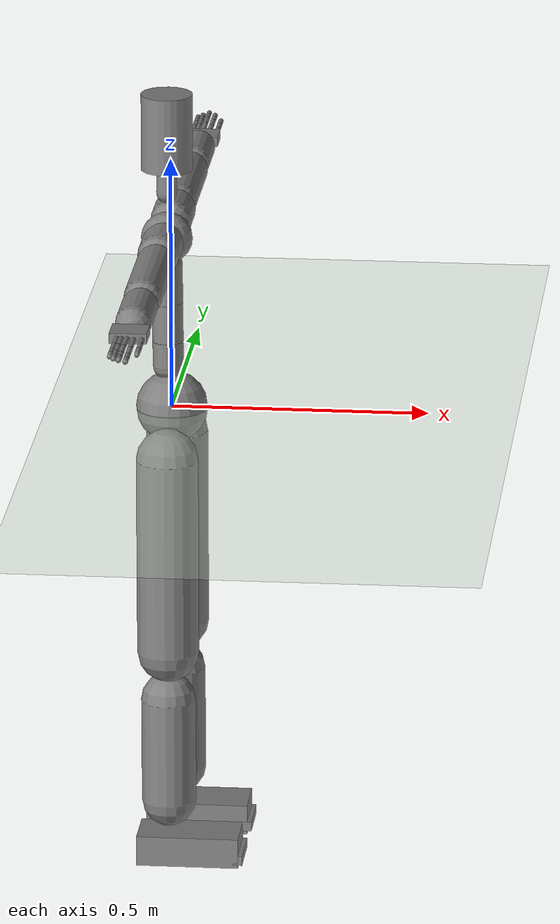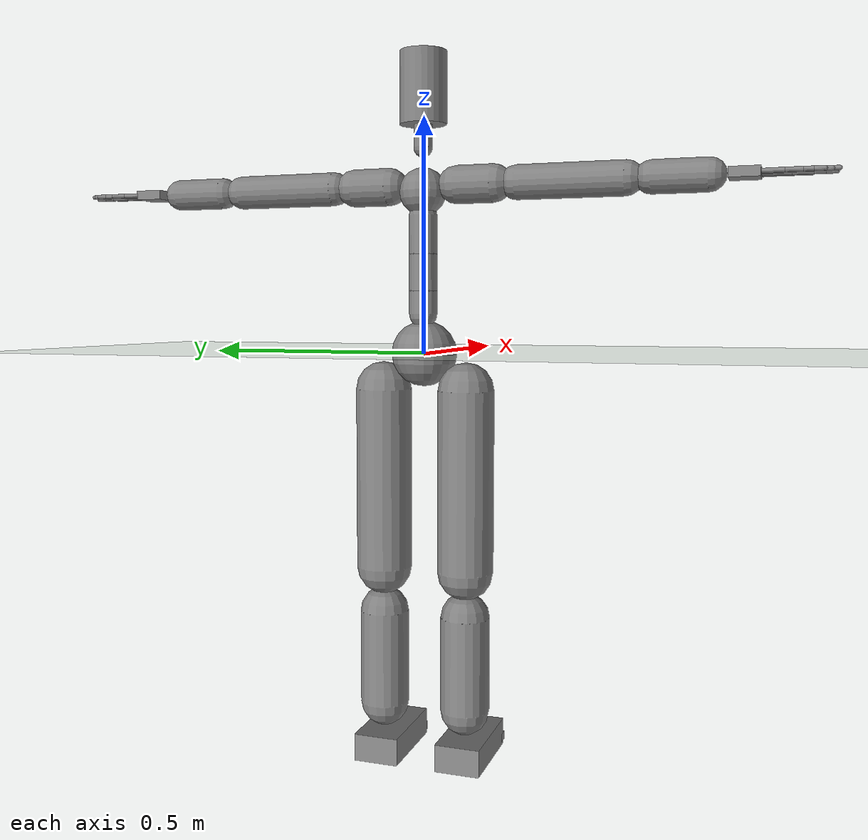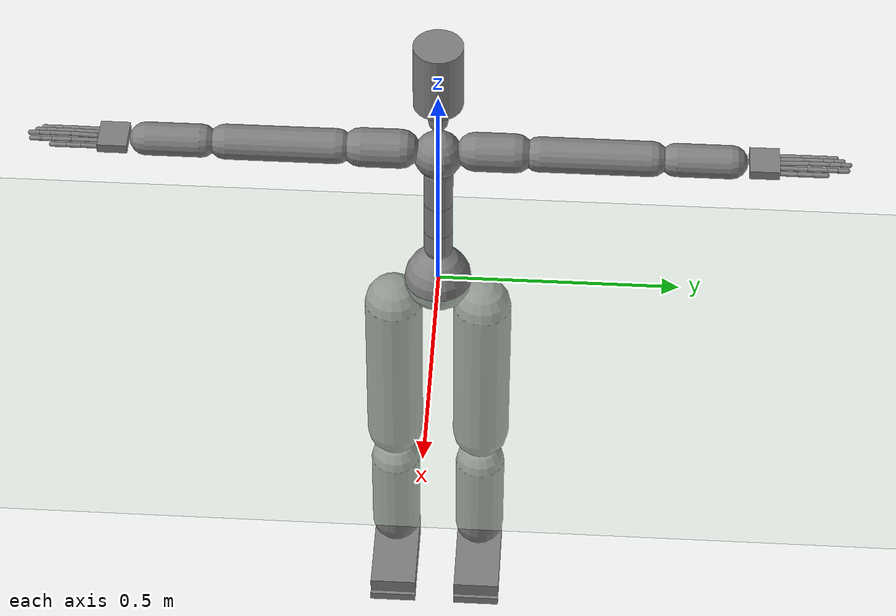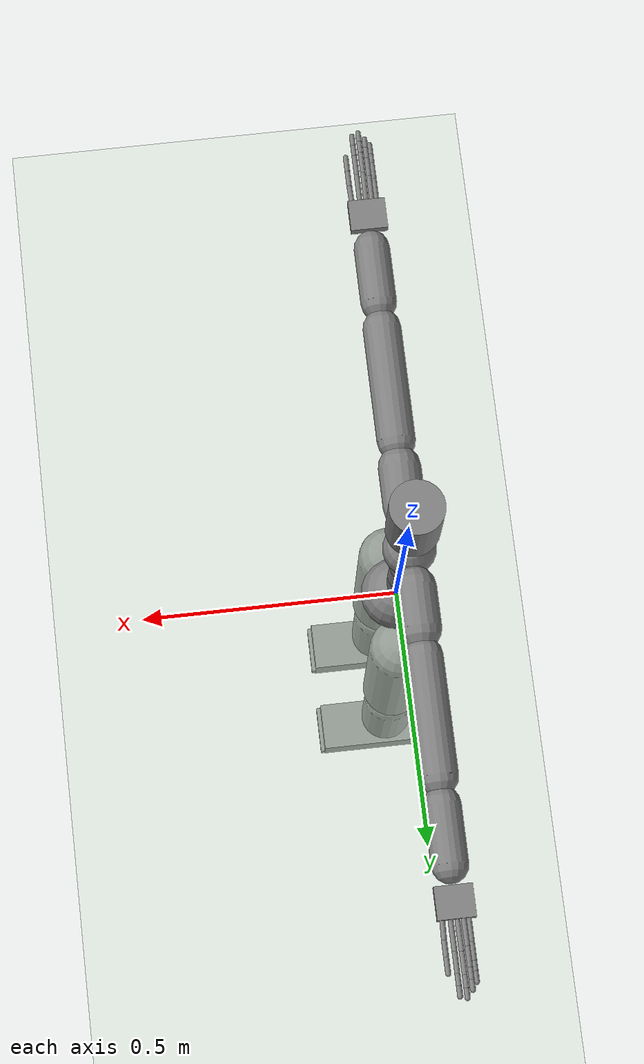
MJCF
<!-- change the damping from 50 to 500 -->
<mujoco model="humanoid">
  <compiler coordinate="local"/>
  <statistic extent="2" center="0 0 1"/>
  <option timestep="0.00555"/>
  <default>
    <motor ctrlrange="-1 1" ctrllimited="true"/>
    <geom type="capsule" condim="1" friction="1.0 0.05 0.05" solimp=".9 .99 .003" solref=".015 1"/>
    <joint type="hinge" damping="0.1" stiffness="5" armature=".007" limited="true" solimplimit="0 .99 .01"/>
    <site size=".04" group="3"/>
    <default class="force-torque">
      <site type="box" size=".01 .01 .02" rgba="1 0 0 1"/>
    </default>
    <default class="touch">
      <site type="capsule" rgba="0 0 1 .3"/>
    </default>
  </default>
  <asset>
    <texture type="skybox" builtin="gradient" rgb1=".4 .5 .6" rgb2="0 0 0" width="100" height="100"/>
    <texture builtin="flat" height="1278" mark="cross" markrgb="1 1 1" name="texgeom" random="0.01" rgb1="0.8 0.6 0.4" rgb2="0.8 0.6 0.4" type="cube" width="127"/>
    <texture builtin="checker" height="100" name="texplane" rgb1="0 0 0" rgb2="0.8 0.8 0.8" type="2d" width="100"/>
    <material name="MatPlane" reflectance="0.5" shininess="1" specular="1" texrepeat="60 60" texture="texplane"/>
    <material name="geom" texture="texgeom" texuniform="true"/>
  </asset>
  <worldbody>
    <light cutoff="100" diffuse="1 1 1" dir="-0 0 -1.3" directional="true" exponent="1" pos="0 0 1.3" specular=".1 .1 .1"/>
    <geom conaffinity="1" condim="3" name="floor" pos="0 0 0" rgba="0.8 0.9 0.8 1" size="100 100 .2" type="plane" material="MatPlane"/>
    <body name="pHipOrigin" pos="0 0 0">
      <freejoint name="pHipOrigin"/>
      <geom type="sphere" contype="1" conaffinity="1" density="4629.6296296296305" size="0.07011" pos="0.0000 0.0000 -0.0000"/>
      <body name="jL5S1" pos="-0.007180346382188555 0.0 0.06462293523202631">
        <geom type="capsule" contype="1" conaffinity="1" density="1000" fromto="0 0 0.02 0.0 0.0 0.06891632825136185" size="0.03"/>
        <joint name="jL5S1_x" type="hinge" pos="0 0 0" axis="1 0 0" stiffness="500" damping="500" armature="0.02" range="-180.0000 180.0000"/>
        <joint name="jL5S1_y" type="hinge" pos="0 0 0" axis="0 1 0" stiffness="500" damping="500" armature="0.02" range="-180.0000 180.0000"/>
        <joint name="jL5S1_z" type="hinge" pos="0 0 0" axis="0 0 1" stiffness="500" damping="500" armature="0.02" range="-180.0000 180.0000"/>
        <body name="jL4L3" pos="0.0 0.0 0.06891632825136185">
          <geom type="capsule" contype="1" conaffinity="1" density="1000" fromto="0 0 0 -0.0005982957480561813 0.0 0.07754973557177482" size="0.03"/>
          <joint name="jL4L3_x" type="hinge" pos="0 0 0" axis="1 0 0" stiffness="500" damping="500" armature="0.02" range="-180.0000 180.0000"/>
          <joint name="jL4L3_y" type="hinge" pos="0 0 0" axis="0 1 0" stiffness="500" damping="500" armature="0.02" range="-180.0000 180.0000"/>
          <joint name="jL4L3_z" type="hinge" pos="0 0 0" axis="0 0 1" stiffness="500" damping="500" armature="0.02" range="-180.0000 180.0000"/>
          <body name="jL1T12" pos="-0.0005982957480561813 0.0 0.07754973557177482">
            <geom type="capsule" contype="1" conaffinity="1" density="1000" fromto="0 0 0 -0.0006235483508225763 0.0 0.08066581381203114" size="0.03"/>
            <joint name="jL1T12_x" type="hinge" pos="0 0 0" axis="1 0 0" stiffness="500" damping="500" armature="0.02" range="-180.0000 180.0000"/>
            <joint name="jL1T12_y" type="hinge" pos="0 0 0" axis="0 1 0" stiffness="500" damping="500" armature="0.02" range="-180.0000 180.0000"/>
            <joint name="jL1T12_z" type="hinge" pos="0 0 0" axis="0 0 1" stiffness="500" damping="500" armature="0.02" range="-180.0000 180.0000"/>
            <body name="jT9T8" pos="-0.0006235483508225763 0.0 0.08066581381203114">
              <geom type="sphere" contype="1" conaffinity="1" density="1000" size="0.05011" pos="0.0000 0.0000 0.050000"/>
              <joint name="jT9T8_x" type="hinge" pos="0 0 0" axis="1 0 0" stiffness="500" damping="500" armature="0.02" range="-180.0000 180.0000"/>
              <joint name="jT9T8_y" type="hinge" pos="0 0 0" axis="0 1 0" stiffness="500" damping="500" armature="0.02" range="-180.0000 180.0000"/>
              <joint name="jT9T8_z" type="hinge" pos="0 0 0" axis="0 0 1" stiffness="500" damping="500" armature="0.02" range="-180.0000 180.0000"/>
              <body name="jT1C7" pos="0.0 0.0 0.11084800958633423">
                <geom type="capsule" contype="1" conaffinity="1" density="1000" fromto="0 0 0.03 0.0009172181466941922 0.0 0.07774603617223645" size="0.02"/>
                <joint name="jT1C7_x" type="hinge" pos="0 0 0" axis="1 0 0" stiffness="500" damping="500" armature="0.02" range="-180.0000 180.0000"/>
                <joint name="jT1C7_y" type="hinge" pos="0 0 0" axis="0 1 0" stiffness="500" damping="500" armature="0.02" range="-180.0000 180.0000"/>
                <joint name="jT1C7_z" type="hinge" pos="0 0 0" axis="0 0 1" stiffness="500" damping="500" armature="0.02" range="-180.0000 180.0000"/>
                <body name="jC1Head" pos="0.0009172181466941922 0.0 0.07774603617223645">
                  <geom type="cylinder" contype="1" conaffinity="1" density="1000" fromto="0 0 0 0 0 0.15" size="0.05"/>
                  <joint name="jC1Head_x" type="hinge" pos="0 0 0" axis="1 0 0" stiffness="500" damping="500" armature="0.02" range="-180.0000 180.0000"/>
                  <joint name="jC1Head_y" type="hinge" pos="0 0 0" axis="0 1 0" stiffness="500" damping="500" armature="0.02" range="-180.0000 180.0000"/>
                  <joint name="jC1Head_z" type="hinge" pos="0 0 0" axis="0 0 1" stiffness="500" damping="500" armature="0.02" range="-180.0000 180.0000"/>
                </body>
              </body>
              <body name="jRightT4Shoulder" pos="0.0 -0.025392003848493914 0.0619112784771549">
                <geom type="capsule" contype="1" conaffinity="1" density="1000" fromto="0 -0.05 0 0.0 -0.12868478894233704 0.0" size="0.04"/>
                <joint name="jRightT4Shoulder_x" type="hinge" pos="0 0 0" axis="1 0 0" stiffness="500" damping="500" armature="0.02" range="-180.0000 180.0000"/>
                <joint name="jRightT4Shoulder_y" type="hinge" pos="0 0 0" axis="0 1 0" stiffness="500" damping="500" armature="0.02" range="-180.0000 180.0000"/>
                <joint name="jRightT4Shoulder_z" type="hinge" pos="0 0 0" axis="0 0 1" stiffness="500" damping="500" armature="0.02" range="-180.0000 180.0000"/>
                <body name="jRightShoulder" pos="0.0 -0.12868478894233704 0.0">
                  <geom type="capsule" contype="1" conaffinity="1" density="1000" fromto="0 -0.05 0 0.0 -0.2721332907676697 0.0" size="0.036"/>
                  <joint name="jRightShoulder_x" type="hinge" pos="0 0 0" axis="1 0 0" stiffness="500" damping="500" armature="0.02" range="-180.0000 180.0000"/>
                  <joint name="jRightShoulder_y" type="hinge" pos="0 0 0" axis="0 1 0" stiffness="500" damping="500" armature="0.02" range="-180.0000 180.0000"/>
                  <joint name="jRightShoulder_z" type="hinge" pos="0 0 0" axis="0 0 1" stiffness="500" damping="500" armature="0.02" range="-180.0000 180.0000"/>
                  <body name="jRightElbow" pos="0.0 -0.2721332907676697 0.0">
                    <geom type="capsule" contype="1" conaffinity="1" density="1000" fromto="0 -0.05 0 9.097585321878134e-05 -0.16003785279386482 0.0" size="0.034"/>
                    <joint name="jRightElbow_x" type="hinge" pos="0 0 0" axis="1 0 0" stiffness="500" damping="500" armature="0.02" range="-180.0000 180.0000"/>
                    <joint name="jRightElbow_y" type="hinge" pos="0 0 0" axis="0 1 0" stiffness="500" damping="500" armature="0.02" range="-180.0000 180.0000"/>
                    <joint name="jRightElbow_z" type="hinge" pos="0 0 0" axis="0 0 1" stiffness="500" damping="500" armature="0.02" range="-180.0000 180.0000"/>
                    <body name="jRightWrist" pos="9.097585321878134e-05 -0.22603785279386482 0.0">
                      <geom density="1000" type="box" pos="0 0 0" size="0.035 0.03 0.01" quat="1.0 0 0 0"/>
                      <joint name="jRightWrist_x" type="hinge" pos="0 0 0" axis="1 0 0" stiffness="500" damping="500" armature="0.02" range="-180.0000 180.0000"/>
                      <joint name="jRightWrist_y" type="hinge" pos="0 0 0" axis="0 1 0" stiffness="500" damping="500" armature="0.02" range="-180.0000 180.0000"/>
                      <joint name="jRightWrist_z" type="hinge" pos="0 0 0" axis="0 0 1" stiffness="500" damping="500" armature="0.02" range="-180.0000 180.0000"/>
                      <body name="jRightFirstCMC" pos="0.026230283 -0.025143197 -0.0011878677">
                        <geom type="capsule" contype="1" conaffinity="1" density="1000" fromto="0 0 0 0.00136227672919631 -0.038442548364400864 0.0008122885483317077" size="0.005"/>
                        <joint name="jRightFirstCMC_x" type="hinge" pos="0 0 0" axis="1 0 0" stiffness="500" damping="500" armature="0.02" range="-180.0000 180.0000"/>
                        <joint name="jRightFirstCMC_y" type="hinge" pos="0 0 0" axis="0 1 0" stiffness="500" damping="500" armature="0.02" range="-180.0000 180.0000"/>
                        <joint name="jRightFirstCMC_z" type="hinge" pos="0 0 0" axis="0 0 1" stiffness="500" damping="500" armature="0.02" range="-180.0000 180.0000"/>
                        <body name="jRightFirstMCP" pos="0.0013622767 -0.03844255 0.00081228855">
                          <geom type="capsule" contype="1" conaffinity="1" density="1000" fromto="0 0 0 0.0 -0.02956804819405079 0.0" size="0.005"/>
                          <joint name="jRightFirstMCP_x" type="hinge" pos="0 0 0" axis="1 0 0" stiffness="500" damping="500" armature="0.02" range="-180.0000 180.0000"/>
                          <joint name="jRightFirstMCP_y" type="hinge" pos="0 0 0" axis="0 1 0" stiffness="500" damping="500" armature="0.02" range="-180.0000 180.0000"/>
                          <joint name="jRightFirstMCP_z" type="hinge" pos="0 0 0" axis="0 0 1" stiffness="500" damping="500" armature="0.02" range="-180.0000 180.0000"/>
                          <body name="jRightIP" pos="0.0 -0.029568048 0.0">
                            <geom type="capsule" contype="1" conaffinity="1" density="1000" fromto="0 0 0 0.0 -0.029483415186405182 0.0" size="0.005"/>
                            <joint name="jRightIP_x" type="hinge" pos="0 0 0" axis="1 0 0" stiffness="500" damping="500" armature="0.02" range="-180.0000 180.0000"/>
                            <joint name="jRightIP_y" type="hinge" pos="0 0 0" axis="0 1 0" stiffness="500" damping="500" armature="0.02" range="-180.0000 180.0000"/>
                            <joint name="jRightIP_z" type="hinge" pos="0 0 0" axis="0 0 1" stiffness="500" damping="500" armature="0.02" range="-180.0000 180.0000"/>
                          </body>
                        </body>
                      </body>
                      <body name="jRightSecondCMC" pos="0.011155235 -0.032592066 -0.0005684847">
                        <geom type="capsule" contype="1" conaffinity="1" density="1000" fromto="0 0 0 -0.00032714949338696897 -0.05217788740992546 -0.0005412576720118523" size="0.005"/>
                        <joint name="jRightSecondCMC_x" type="hinge" pos="0 0 0" axis="1 0 0" stiffness="500" damping="500" armature="0.02" range="-180.0000 180.0000"/>
                        <joint name="jRightSecondCMC_y" type="hinge" pos="0 0 0" axis="0 1 0" stiffness="500" damping="500" armature="0.02" range="-180.0000 180.0000"/>
                        <joint name="jRightSecondCMC_z" type="hinge" pos="0 0 0" axis="0 0 1" stiffness="500" damping="500" armature="0.02" range="-180.0000 180.0000"/>
                        <body name="jRightSecondMCP" pos="-0.0003271495 -0.052177887 -0.0005412577">
                          <geom type="capsule" contype="1" conaffinity="1" density="1000" fromto="0 0 0 0.0 -0.03924357891082764 0.0" size="0.005"/>
                          <joint name="jRightSecondMCP_x" type="hinge" pos="0 0 0" axis="1 0 0" stiffness="500" damping="500" armature="0.02" range="-180.0000 180.0000"/>
                          <joint name="jRightSecondMCP_y" type="hinge" pos="0 0 0" axis="0 1 0" stiffness="500" damping="500" armature="0.02" range="-180.0000 180.0000"/>
                          <joint name="jRightSecondMCP_z" type="hinge" pos="0 0 0" axis="0 0 1" stiffness="500" damping="500" armature="0.02" range="-180.0000 180.0000"/>
                          <body name="jRightSecondPIP" pos="0.0 -0.03924358 0.0">
                            <geom type="capsule" contype="1" conaffinity="1" density="1000" fromto="0 0 0 0.0 -0.02142910845577717 0.0" size="0.005"/>
                            <joint name="jRightSecondPIP_x" type="hinge" pos="0 0 0" axis="1 0 0" stiffness="500" damping="500" armature="0.02" range="-180.0000 180.0000"/>
                            <joint name="jRightSecondPIP_y" type="hinge" pos="0 0 0" axis="0 1 0" stiffness="500" damping="500" armature="0.02" range="-180.0000 180.0000"/>
                            <joint name="jRightSecondPIP_z" type="hinge" pos="0 0 0" axis="0 0 1" stiffness="500" damping="500" armature="0.02" range="-180.0000 180.0000"/>
                            <body name="jRightSecondDIP" pos="0.0 -0.021429108 0.0">
                              <geom type="capsule" contype="1" conaffinity="1" density="1000" fromto="0 0 0 0.0 -0.019212350249290466 0.0" size="0.005"/>
                              <joint name="jRightSecondDIP_x" type="hinge" pos="0 0 0" axis="1 0 0" stiffness="500" damping="500" armature="0.02" range="-180.0000 180.0000"/>
                              <joint name="jRightSecondDIP_y" type="hinge" pos="0 0 0" axis="0 1 0" stiffness="500" damping="500" armature="0.02" range="-180.0000 180.0000"/>
                              <joint name="jRightSecondDIP_z" type="hinge" pos="0 0 0" axis="0 0 1" stiffness="500" damping="500" armature="0.02" range="-180.0000 180.0000"/>
                            </body>
                          </body>
                        </body>
                      </body>
                      <body name="jRightThirdCMC" pos="-0.00063335785 -0.03425053 0.0014399445">
                        <geom type="capsule" contype="1" conaffinity="1" density="1000" fromto="0 0 0 -0.0006345764850266278 -0.0525747574865818 0.0014303569914773107" size="0.005"/>
                        <joint name="jRightThirdCMC_x" type="hinge" pos="0 0 0" axis="1 0 0" stiffness="500" damping="500" armature="0.02" range="-180.0000 180.0000"/>
                        <joint name="jRightThirdCMC_y" type="hinge" pos="0 0 0" axis="0 1 0" stiffness="500" damping="500" armature="0.02" range="-180.0000 180.0000"/>
                        <joint name="jRightThirdCMC_z" type="hinge" pos="0 0 0" axis="0 0 1" stiffness="500" damping="500" armature="0.02" range="-180.0000 180.0000"/>
                        <body name="jRightThirdMCP" pos="-0.0006345765 -0.052574757 0.001430357">
                          <geom type="capsule" contype="1" conaffinity="1" density="1000" fromto="0 0 0 0.0 -0.041011691093444824 0.0" size="0.005"/>
                          <joint name="jRightThirdMCP_x" type="hinge" pos="0 0 0" axis="1 0 0" stiffness="500" damping="500" armature="0.02" range="-180.0000 180.0000"/>
                          <joint name="jRightThirdMCP_y" type="hinge" pos="0 0 0" axis="0 1 0" stiffness="500" damping="500" armature="0.02" range="-180.0000 180.0000"/>
                          <joint name="jRightThirdMCP_z" type="hinge" pos="0 0 0" axis="0 0 1" stiffness="500" damping="500" armature="0.02" range="-180.0000 180.0000"/>
                          <body name="jRightThirdPIP" pos="0.0 -0.04101169 0.0">
                            <geom type="capsule" contype="1" conaffinity="1" density="1000" fromto="0 0 0 0.0 -0.022741451859474182 0.0" size="0.005"/>
                            <joint name="jRightThirdPIP_x" type="hinge" pos="0 0 0" axis="1 0 0" stiffness="500" damping="500" armature="0.02" range="-180.0000 180.0000"/>
                            <joint name="jRightThirdPIP_y" type="hinge" pos="0 0 0" axis="0 1 0" stiffness="500" damping="500" armature="0.02" range="-180.0000 180.0000"/>
                            <joint name="jRightThirdPIP_z" type="hinge" pos="0 0 0" axis="0 0 1" stiffness="500" damping="500" armature="0.02" range="-180.0000 180.0000"/>
                            <body name="jRightThirdDIP" pos="0.0 -0.022741452 0.0">
                              <geom type="capsule" contype="1" conaffinity="1" density="1000" fromto="0 0 0 0.0 -0.01808418333530426 0.0" size="0.005"/>
                              <joint name="jRightThirdDIP_x" type="hinge" pos="0 0 0" axis="1 0 0" stiffness="500" damping="500" armature="0.02" range="-180.0000 180.0000"/>
                              <joint name="jRightThirdDIP_y" type="hinge" pos="0 0 0" axis="0 1 0" stiffness="500" damping="500" armature="0.02" range="-180.0000 180.0000"/>
                              <joint name="jRightThirdDIP_z" type="hinge" pos="0 0 0" axis="0 0 1" stiffness="500" damping="500" armature="0.02" range="-180.0000 180.0000"/>
                            </body>
                          </body>
                        </body>
                      </body>
                      <body name="jRightFourthCMC" pos="-0.0116171455 -0.03235567 0.00076160184">
                        <geom type="capsule" contype="1" conaffinity="1" density="1000" fromto="0 0 0 -0.00034027619403786957 -0.04663816839456558 0.0007327226339839399" size="0.005"/>
                        <joint name="jRightFourthCMC_x" type="hinge" pos="0 0 0" axis="1 0 0" stiffness="500" damping="500" armature="0.02" range="-180.0000 180.0000"/>
                        <joint name="jRightFourthCMC_y" type="hinge" pos="0 0 0" axis="0 1 0" stiffness="500" damping="500" armature="0.02" range="-180.0000 180.0000"/>
                        <joint name="jRightFourthCMC_z" type="hinge" pos="0 0 0" axis="0 0 1" stiffness="500" damping="500" armature="0.02" range="-180.0000 180.0000"/>
                        <body name="jRightFourthMCP" pos="-0.0003402762 -0.04663817 0.00073272263">
                          <geom type="capsule" contype="1" conaffinity="1" density="1000" fromto="0 0 0 0.0 -0.036567993462085724 0.0" size="0.005"/>
                          <joint name="jRightFourthMCP_x" type="hinge" pos="0 0 0" axis="1 0 0" stiffness="500" damping="500" armature="0.02" range="-180.0000 180.0000"/>
                          <joint name="jRightFourthMCP_y" type="hinge" pos="0 0 0" axis="0 1 0" stiffness="500" damping="500" armature="0.02" range="-180.0000 180.0000"/>
                          <joint name="jRightFourthMCP_z" type="hinge" pos="0 0 0" axis="0 0 1" stiffness="500" damping="500" armature="0.02" range="-180.0000 180.0000"/>
                          <body name="jRightFourthPIP" pos="0.0 -0.036567993 0.0">
                            <geom type="capsule" contype="1" conaffinity="1" density="1000" fromto="0 0 0 0.0 -0.02168475091457367 0.0" size="0.005"/>
                            <joint name="jRightFourthPIP_x" type="hinge" pos="0 0 0" axis="1 0 0" stiffness="500" damping="500" armature="0.02" range="-180.0000 180.0000"/>
                            <joint name="jRightFourthPIP_y" type="hinge" pos="0 0 0" axis="0 1 0" stiffness="500" damping="500" armature="0.02" range="-180.0000 180.0000"/>
                            <joint name="jRightFourthPIP_z" type="hinge" pos="0 0 0" axis="0 0 1" stiffness="500" damping="500" armature="0.02" range="-180.0000 180.0000"/>
                            <body name="jRightFourthDIP" pos="0.0 -0.02168475 0.0">
                              <geom type="capsule" contype="1" conaffinity="1" density="1000" fromto="0 0 0 0.0 -0.01827874779701233 0.0" size="0.005"/>
                              <joint name="jRightFourthDIP_x" type="hinge" pos="0 0 0" axis="1 0 0" stiffness="500" damping="500" armature="0.02" range="-180.0000 180.0000"/>
                              <joint name="jRightFourthDIP_y" type="hinge" pos="0 0 0" axis="0 1 0" stiffness="500" damping="500" armature="0.02" range="-180.0000 180.0000"/>
                              <joint name="jRightFourthDIP_z" type="hinge" pos="0 0 0" axis="0 0 1" stiffness="500" damping="500" armature="0.02" range="-180.0000 180.0000"/>
                            </body>
                          </body>
                        </body>
                      </body>
                      <body name="jRightFifthCMC" pos="-0.02037089 -0.02838451 0.0005599352">
                        <geom type="capsule" contype="1" conaffinity="1" density="1000" fromto="0 0 0 -6.454563390434487e-06 -0.0436994768679142 0.0006013591773808002" size="0.005"/>
                        <joint name="jRightFifthCMC_x" type="hinge" pos="0 0 0" axis="1 0 0" stiffness="500" damping="500" armature="0.02" range="-180.0000 180.0000"/>
                        <joint name="jRightFifthCMC_y" type="hinge" pos="0 0 0" axis="0 1 0" stiffness="500" damping="500" armature="0.02" range="-180.0000 180.0000"/>
                        <joint name="jRightFifthCMC_z" type="hinge" pos="0 0 0" axis="0 0 1" stiffness="500" damping="500" armature="0.02" range="-180.0000 180.0000"/>
                        <body name="jRightFifthMCP" pos="-6.4545634e-06 -0.043699477 0.0006013592">
                          <geom type="capsule" contype="1" conaffinity="1" density="1000" fromto="0 0 0 0.0 -0.032733701169490814 0.0" size="0.005"/>
                          <joint name="jRightFifthMCP_x" type="hinge" pos="0 0 0" axis="1 0 0" stiffness="500" damping="500" armature="0.02" range="-180.0000 180.0000"/>
                          <joint name="jRightFifthMCP_y" type="hinge" pos="0 0 0" axis="0 1 0" stiffness="500" damping="500" armature="0.02" range="-180.0000 180.0000"/>
                          <joint name="jRightFifthMCP_z" type="hinge" pos="0 0 0" axis="0 0 1" stiffness="500" damping="500" armature="0.02" range="-180.0000 180.0000"/>
                          <body name="jRightFifthPIP" pos="0.0 -0.0327337 0.0">
                            <geom type="capsule" contype="1" conaffinity="1" density="1000" fromto="0 0 0 0.0 -0.01849217712879181 0.0" size="0.005"/>
                            <joint name="jRightFifthPIP_x" type="hinge" pos="0 0 0" axis="1 0 0" stiffness="500" damping="500" armature="0.02" range="-180.0000 180.0000"/>
                            <joint name="jRightFifthPIP_y" type="hinge" pos="0 0 0" axis="0 1 0" stiffness="500" damping="500" armature="0.02" range="-180.0000 180.0000"/>
                            <joint name="jRightFifthPIP_z" type="hinge" pos="0 0 0" axis="0 0 1" stiffness="500" damping="500" armature="0.02" range="-180.0000 180.0000"/>
                            <body name="jRightFifthDIP" pos="0.0 -0.018492177 0.0">
                              <geom type="capsule" contype="1" conaffinity="1" density="1000" fromto="0 0 0 0.0 -0.01961217075586319 0.0" size="0.005"/>
                              <joint name="jRightFifthDIP_x" type="hinge" pos="0 0 0" axis="1 0 0" stiffness="500" damping="500" armature="0.02" range="-180.0000 180.0000"/>
                              <joint name="jRightFifthDIP_y" type="hinge" pos="0 0 0" axis="0 1 0" stiffness="500" damping="500" armature="0.02" range="-180.0000 180.0000"/>
                              <joint name="jRightFifthDIP_z" type="hinge" pos="0 0 0" axis="0 0 1" stiffness="500" damping="500" armature="0.02" range="-180.0000 180.0000"/>
                            </body>
                          </body>
                        </body>
                      </body>
                    </body>
                  </body>
                </body>
              </body>
              <body name="jLeftT4Shoulder" pos="0.0 0.02546286294844947 0.06208404851516233">
                <geom type="capsule" contype="1" conaffinity="1" density="1000" fromto="0 0.05 0 0.0 0.1279546022415161 0.0" size="0.04"/>
                <joint name="jLeftT4Shoulder_x" type="hinge" pos="0 0 0" axis="1 0 0" stiffness="500" damping="500" armature="0.02" range="-180.0000 180.0000"/>
                <joint name="jLeftT4Shoulder_y" type="hinge" pos="0 0 0" axis="0 1 0" stiffness="500" damping="500" armature="0.02" range="-180.0000 180.0000"/>
                <joint name="jLeftT4Shoulder_z" type="hinge" pos="0 0 0" axis="0 0 1" stiffness="500" damping="500" armature="0.02" range="-180.0000 180.0000"/>
                <body name="jLeftShoulder" pos="0.0 0.1279546022415161 0.0">
                  <geom type="capsule" contype="1" conaffinity="1" density="1000" fromto="0 0.05 0 0.0 0.27217936515808105 0.0" size="0.036"/>
                  <joint name="jLeftShoulder_x" type="hinge" pos="0 0 0" axis="1 0 0" stiffness="500" damping="500" armature="0.02" range="-180.0000 180.0000"/>
                  <joint name="jLeftShoulder_y" type="hinge" pos="0 0 0" axis="0 1 0" stiffness="500" damping="500" armature="0.02" range="-180.0000 180.0000"/>
                  <joint name="jLeftShoulder_z" type="hinge" pos="0 0 0" axis="0 0 1" stiffness="500" damping="500" armature="0.02" range="-180.0000 180.0000"/>
                  <body name="jLeftElbow" pos="0.0 0.27217936515808105 0.0">
                    <geom type="capsule" contype="1" conaffinity="1" density="1000" fromto="0 0.05 0 9.0581078525661e-05 0.15905699885501043 0.0" size="0.034"/>
                    <joint name="jLeftElbow_x" type="hinge" pos="0 0 0" axis="1 0 0" stiffness="500" damping="500" armature="0.02" range="-180.0000 180.0000"/>
                    <joint name="jLeftElbow_y" type="hinge" pos="0 0 0" axis="0 1 0" stiffness="500" damping="500" armature="0.02" range="-180.0000 180.0000"/>
                    <joint name="jLeftElbow_z" type="hinge" pos="0 0 0" axis="0 0 1" stiffness="500" damping="500" armature="0.02" range="-180.0000 180.0000"/>
                    <body name="jLeftWrist" pos="9.0581078525661e-05 0.22505699885501043 0.0">
                      <geom density="1000" type="box" pos="0 0 0" size="0.035 0.03 0.01" quat="1.0 0 0 0"/>
                      <joint name="jLeftWrist_x" type="hinge" pos="0 0 0" axis="1 0 0" stiffness="500" damping="500" armature="0.02" range="-180.0000 180.0000"/>
                      <joint name="jLeftWrist_y" type="hinge" pos="0 0 0" axis="0 1 0" stiffness="500" damping="500" armature="0.02" range="-180.0000 180.0000"/>
                      <joint name="jLeftWrist_z" type="hinge" pos="0 0 0" axis="0 0 1" stiffness="500" damping="500" armature="0.02" range="-180.0000 180.0000"/>
                      <body name="jLeftFirstCMC" pos="0.025673268 0.0257339 -0.0011490509">
                        <geom type="capsule" contype="1" conaffinity="1" density="1000" fromto="0 0 0 0.0013491541612893343 0.03844168409705162 0.000791606493294239" size="0.005"/>
                        <joint name="jLeftFirstCMC_x" type="hinge" pos="0 0 0" axis="1 0 0" stiffness="500" damping="500" armature="0.02" range="-180.0000 180.0000"/>
                        <joint name="jLeftFirstCMC_y" type="hinge" pos="0 0 0" axis="0 1 0" stiffness="500" damping="500" armature="0.02" range="-180.0000 180.0000"/>
                        <joint name="jLeftFirstCMC_z" type="hinge" pos="0 0 0" axis="0 0 1" stiffness="500" damping="500" armature="0.02" range="-180.0000 180.0000"/>
                        <body name="jLeftFirstMCP" pos="0.0013491542 0.038441684 0.0007916065">
                          <geom type="capsule" contype="1" conaffinity="1" density="1000" fromto="0 0 0 0.0 0.02956804819405079 0.0" size="0.005"/>
                          <joint name="jLeftFirstMCP_x" type="hinge" pos="0 0 0" axis="1 0 0" stiffness="500" damping="500" armature="0.02" range="-180.0000 180.0000"/>
                          <joint name="jLeftFirstMCP_y" type="hinge" pos="0 0 0" axis="0 1 0" stiffness="500" damping="500" armature="0.02" range="-180.0000 180.0000"/>
                          <joint name="jLeftFirstMCP_z" type="hinge" pos="0 0 0" axis="0 0 1" stiffness="500" damping="500" armature="0.02" range="-180.0000 180.0000"/>
                          <body name="jLeftIP" pos="0.0 0.029568048 0.0">
                            <geom type="capsule" contype="1" conaffinity="1" density="1000" fromto="0 0 0 0.0 0.029483415186405182 0.0" size="0.005"/>
                            <joint name="jLeftIP_x" type="hinge" pos="0 0 0" axis="1 0 0" stiffness="500" damping="500" armature="0.02" range="-180.0000 180.0000"/>
                            <joint name="jLeftIP_y" type="hinge" pos="0 0 0" axis="0 1 0" stiffness="500" damping="500" armature="0.02" range="-180.0000 180.0000"/>
                            <joint name="jLeftIP_z" type="hinge" pos="0 0 0" axis="0 0 1" stiffness="500" damping="500" armature="0.02" range="-180.0000 180.0000"/>
                          </body>
                        </body>
                      </body>
                      <body name="jLeftSecondCMC" pos="0.011283724 0.032532096 -0.0005731792">
                        <geom type="capsule" contype="1" conaffinity="1" density="1000" fromto="0 0 0 -0.00028525269590318203 0.05217896029353142 -0.0005479440442286432" size="0.005"/>
                        <joint name="jLeftSecondCMC_x" type="hinge" pos="0 0 0" axis="1 0 0" stiffness="500" damping="500" armature="0.02" range="-180.0000 180.0000"/>
                        <joint name="jLeftSecondCMC_y" type="hinge" pos="0 0 0" axis="0 1 0" stiffness="500" damping="500" armature="0.02" range="-180.0000 180.0000"/>
                        <joint name="jLeftSecondCMC_z" type="hinge" pos="0 0 0" axis="0 0 1" stiffness="500" damping="500" armature="0.02" range="-180.0000 180.0000"/>
                        <body name="jLeftSecondMCP" pos="-0.0002852527 0.05217896 -0.00054794404">
                          <geom type="capsule" contype="1" conaffinity="1" density="1000" fromto="0 0 0 0.0 0.03924357891082764 0.0" size="0.005"/>
                          <joint name="jLeftSecondMCP_x" type="hinge" pos="0 0 0" axis="1 0 0" stiffness="500" damping="500" armature="0.02" range="-180.0000 180.0000"/>
                          <joint name="jLeftSecondMCP_y" type="hinge" pos="0 0 0" axis="0 1 0" stiffness="500" damping="500" armature="0.02" range="-180.0000 180.0000"/>
                          <joint name="jLeftSecondMCP_z" type="hinge" pos="0 0 0" axis="0 0 1" stiffness="500" damping="500" armature="0.02" range="-180.0000 180.0000"/>
                          <body name="jLeftSecondPIP" pos="0.0 0.03924358 0.0">
                            <geom type="capsule" contype="1" conaffinity="1" density="1000" fromto="0 0 0 0.0 0.02142910845577717 0.0" size="0.005"/>
                            <joint name="jLeftSecondPIP_x" type="hinge" pos="0 0 0" axis="1 0 0" stiffness="500" damping="500" armature="0.02" range="-180.0000 180.0000"/>
                            <joint name="jLeftSecondPIP_y" type="hinge" pos="0 0 0" axis="0 1 0" stiffness="500" damping="500" armature="0.02" range="-180.0000 180.0000"/>
                            <joint name="jLeftSecondPIP_z" type="hinge" pos="0 0 0" axis="0 0 1" stiffness="500" damping="500" armature="0.02" range="-180.0000 180.0000"/>
                            <body name="jLeftSecondDIP" pos="0.0 0.021429108 0.0">
                              <geom type="capsule" contype="1" conaffinity="1" density="1000" fromto="0 0 0 0.0 0.019212350249290466 0.0" size="0.005"/>
                              <joint name="jLeftSecondDIP_x" type="hinge" pos="0 0 0" axis="1 0 0" stiffness="500" damping="500" armature="0.02" range="-180.0000 180.0000"/>
                              <joint name="jLeftSecondDIP_y" type="hinge" pos="0 0 0" axis="0 1 0" stiffness="500" damping="500" armature="0.02" range="-180.0000 180.0000"/>
                              <joint name="jLeftSecondDIP_z" type="hinge" pos="0 0 0" axis="0 0 1" stiffness="500" damping="500" armature="0.02" range="-180.0000 180.0000"/>
                            </body>
                          </body>
                        </body>
                      </body>
                      <body name="jLeftThirdCMC" pos="-0.0006370762 0.03425361 0.0013919458">
                        <geom type="capsule" contype="1" conaffinity="1" density="1000" fromto="0 0 0 -0.0006396984681487083 0.05257577821612358 0.0014016014756634831" size="0.005"/>
                        <joint name="jLeftThirdCMC_x" type="hinge" pos="0 0 0" axis="1 0 0" stiffness="500" damping="500" armature="0.02" range="-180.0000 180.0000"/>
                        <joint name="jLeftThirdCMC_y" type="hinge" pos="0 0 0" axis="0 1 0" stiffness="500" damping="500" armature="0.02" range="-180.0000 180.0000"/>
                        <joint name="jLeftThirdCMC_z" type="hinge" pos="0 0 0" axis="0 0 1" stiffness="500" damping="500" armature="0.02" range="-180.0000 180.0000"/>
                        <body name="jLeftThirdMCP" pos="-0.00063969847 0.05257578 0.0014016015">
                          <geom type="capsule" contype="1" conaffinity="1" density="1000" fromto="0 0 0 0.0 0.041011691093444824 0.0" size="0.005"/>
                          <joint name="jLeftThirdMCP_x" type="hinge" pos="0 0 0" axis="1 0 0" stiffness="500" damping="500" armature="0.02" range="-180.0000 180.0000"/>
                          <joint name="jLeftThirdMCP_y" type="hinge" pos="0 0 0" axis="0 1 0" stiffness="500" damping="500" armature="0.02" range="-180.0000 180.0000"/>
                          <joint name="jLeftThirdMCP_z" type="hinge" pos="0 0 0" axis="0 0 1" stiffness="500" damping="500" armature="0.02" range="-180.0000 180.0000"/>
                          <body name="jLeftThirdPIP" pos="0.0 0.04101169 0.0">
                            <geom type="capsule" contype="1" conaffinity="1" density="1000" fromto="0 0 0 0.0 0.022741451859474182 0.0" size="0.005"/>
                            <joint name="jLeftThirdPIP_x" type="hinge" pos="0 0 0" axis="1 0 0" stiffness="500" damping="500" armature="0.02" range="-180.0000 180.0000"/>
                            <joint name="jLeftThirdPIP_y" type="hinge" pos="0 0 0" axis="0 1 0" stiffness="500" damping="500" armature="0.02" range="-180.0000 180.0000"/>
                            <joint name="jLeftThirdPIP_z" type="hinge" pos="0 0 0" axis="0 0 1" stiffness="500" damping="500" armature="0.02" range="-180.0000 180.0000"/>
                            <body name="jLeftThirdDIP" pos="0.0 0.022741452 0.0">
                              <geom type="capsule" contype="1" conaffinity="1" density="1000" fromto="0 0 0 0.0 0.01808418333530426 0.0" size="0.005"/>
                              <joint name="jLeftThirdDIP_x" type="hinge" pos="0 0 0" axis="1 0 0" stiffness="500" damping="500" armature="0.02" range="-180.0000 180.0000"/>
                              <joint name="jLeftThirdDIP_y" type="hinge" pos="0 0 0" axis="0 1 0" stiffness="500" damping="500" armature="0.02" range="-180.0000 180.0000"/>
                              <joint name="jLeftThirdDIP_z" type="hinge" pos="0 0 0" axis="0 0 1" stiffness="500" damping="500" armature="0.02" range="-180.0000 180.0000"/>
                            </body>
                          </body>
                        </body>
                      </body>
                      <body name="jLeftFourthCMC" pos="-0.012043418 0.03219017 0.0008130027">
                        <geom type="capsule" contype="1" conaffinity="1" density="1000" fromto="0 0 0 -0.0003659355570562184 0.046635501086711884 0.000774938496761024" size="0.005"/>
                        <joint name="jLeftFourthCMC_x" type="hinge" pos="0 0 0" axis="1 0 0" stiffness="500" damping="500" armature="0.02" range="-180.0000 180.0000"/>
                        <joint name="jLeftFourthCMC_y" type="hinge" pos="0 0 0" axis="0 1 0" stiffness="500" damping="500" armature="0.02" range="-180.0000 180.0000"/>
                        <joint name="jLeftFourthCMC_z" type="hinge" pos="0 0 0" axis="0 0 1" stiffness="500" damping="500" armature="0.02" range="-180.0000 180.0000"/>
                        <body name="jLeftFourthMCP" pos="-0.00036593556 0.0466355 0.0007749385">
                          <geom type="capsule" contype="1" conaffinity="1" density="1000" fromto="0 0 0 0.0 0.036567993462085724 0.0" size="0.005"/>
                          <joint name="jLeftFourthMCP_x" type="hinge" pos="0 0 0" axis="1 0 0" stiffness="500" damping="500" armature="0.02" range="-180.0000 180.0000"/>
                          <joint name="jLeftFourthMCP_y" type="hinge" pos="0 0 0" axis="0 1 0" stiffness="500" damping="500" armature="0.02" range="-180.0000 180.0000"/>
                          <joint name="jLeftFourthMCP_z" type="hinge" pos="0 0 0" axis="0 0 1" stiffness="500" damping="500" armature="0.02" range="-180.0000 180.0000"/>
                          <body name="jLeftFourthPIP" pos="0.0 0.036567993 0.0">
                            <geom type="capsule" contype="1" conaffinity="1" density="1000" fromto="0 0 0 0.0 0.02168475091457367 0.0" size="0.005"/>
                            <joint name="jLeftFourthPIP_x" type="hinge" pos="0 0 0" axis="1 0 0" stiffness="500" damping="500" armature="0.02" range="-180.0000 180.0000"/>
                            <joint name="jLeftFourthPIP_y" type="hinge" pos="0 0 0" axis="0 1 0" stiffness="500" damping="500" armature="0.02" range="-180.0000 180.0000"/>
                            <joint name="jLeftFourthPIP_z" type="hinge" pos="0 0 0" axis="0 0 1" stiffness="500" damping="500" armature="0.02" range="-180.0000 180.0000"/>
                            <body name="jLeftFourthDIP" pos="0.0 0.02168475 0.0">
                              <geom type="capsule" contype="1" conaffinity="1" density="1000" fromto="0 0 0 0.0 0.01827874779701233 0.0" size="0.005"/>
                              <joint name="jLeftFourthDIP_x" type="hinge" pos="0 0 0" axis="1 0 0" stiffness="500" damping="500" armature="0.02" range="-180.0000 180.0000"/>
                              <joint name="jLeftFourthDIP_y" type="hinge" pos="0 0 0" axis="0 1 0" stiffness="500" damping="500" armature="0.02" range="-180.0000 180.0000"/>
                              <joint name="jLeftFourthDIP_z" type="hinge" pos="0 0 0" axis="0 0 1" stiffness="500" damping="500" armature="0.02" range="-180.0000 180.0000"/>
                            </body>
                          </body>
                        </body>
                      </body>
                      <body name="jLeftFifthCMC" pos="-0.020988 0.027935775 0.00056893524">
                        <geom type="capsule" contype="1" conaffinity="1" density="1000" fromto="0 0 0 -1.2393018550937995e-05 0.04369828477501869 0.0006287908181548119" size="0.005"/>
                        <joint name="jLeftFifthCMC_x" type="hinge" pos="0 0 0" axis="1 0 0" stiffness="500" damping="500" armature="0.02" range="-180.0000 180.0000"/>
                        <joint name="jLeftFifthCMC_y" type="hinge" pos="0 0 0" axis="0 1 0" stiffness="500" damping="500" armature="0.02" range="-180.0000 180.0000"/>
                        <joint name="jLeftFifthCMC_z" type="hinge" pos="0 0 0" axis="0 0 1" stiffness="500" damping="500" armature="0.02" range="-180.0000 180.0000"/>
                        <body name="jLeftFifthMCP" pos="-1.2393019e-05 0.043698285 0.0006287908">
                          <geom type="capsule" contype="1" conaffinity="1" density="1000" fromto="0 0 0 0.0 0.032733701169490814 0.0" size="0.005"/>
                          <joint name="jLeftFifthMCP_x" type="hinge" pos="0 0 0" axis="1 0 0" stiffness="500" damping="500" armature="0.02" range="-180.0000 180.0000"/>
                          <joint name="jLeftFifthMCP_y" type="hinge" pos="0 0 0" axis="0 1 0" stiffness="500" damping="500" armature="0.02" range="-180.0000 180.0000"/>
                          <joint name="jLeftFifthMCP_z" type="hinge" pos="0 0 0" axis="0 0 1" stiffness="500" damping="500" armature="0.02" range="-180.0000 180.0000"/>
                          <body name="jLeftFifthPIP" pos="0.0 0.0327337 0.0">
                            <geom type="capsule" contype="1" conaffinity="1" density="1000" fromto="0 0 0 0.0 0.01849217712879181 0.0" size="0.005"/>
                            <joint name="jLeftFifthPIP_x" type="hinge" pos="0 0 0" axis="1 0 0" stiffness="500" damping="500" armature="0.02" range="-180.0000 180.0000"/>
                            <joint name="jLeftFifthPIP_y" type="hinge" pos="0 0 0" axis="0 1 0" stiffness="500" damping="500" armature="0.02" range="-180.0000 180.0000"/>
                            <joint name="jLeftFifthPIP_z" type="hinge" pos="0 0 0" axis="0 0 1" stiffness="500" damping="500" armature="0.02" range="-180.0000 180.0000"/>
                            <body name="jLeftFifthDIP" pos="0.0 0.018492177 0.0">
                              <geom type="capsule" contype="1" conaffinity="1" density="1000" fromto="0 0 0 0.0 0.01961217075586319 0.0" size="0.005"/>
                              <joint name="jLeftFifthDIP_x" type="hinge" pos="0 0 0" axis="1 0 0" stiffness="500" damping="500" armature="0.02" range="-180.0000 180.0000"/>
                              <joint name="jLeftFifthDIP_y" type="hinge" pos="0 0 0" axis="0 1 0" stiffness="500" damping="500" armature="0.02" range="-180.0000 180.0000"/>
                              <joint name="jLeftFifthDIP_z" type="hinge" pos="0 0 0" axis="0 0 1" stiffness="500" damping="500" armature="0.02" range="-180.0000 180.0000"/>
                            </body>
                          </body>
                        </body>
                      </body>
                    </body>
                  </body>
                </body>
              </body>
            </body>
          </body>
        </body>
      </body>
      <body name="jRightHip" pos="-0.00015798732029199646 -0.09375737330478731 0.0014222710540885408">
        <geom type="capsule" contype="1" conaffinity="1" density="2040.816327" fromto="0 0 -0.08 5.644563537568377e-05 0.0 -0.4734109600123032" size="0.0605"/>
        <joint name="jRightHip_x" type="hinge" pos="0 0 0" axis="1 0 0" stiffness="500" damping="500" armature="0.02" range="-180.0000 180.0000"/>
        <joint name="jRightHip_y" type="hinge" pos="0 0 0" axis="0 1 0" stiffness="500" damping="500" armature="0.02" range="-180.0000 180.0000"/>
        <joint name="jRightHip_z" type="hinge" pos="0 0 0" axis="0 0 1" stiffness="500" damping="500" armature="0.02" range="-180.0000 180.0000"/>
        <body name="jRightKnee" pos="5.644563537568377e-05 0.0 -0.4734109600123032">
          <geom type="capsule" contype="1" conaffinity="1" density="1234.567901" fromto="0 0 -0.1 0.0004203012552253568 0.0 -0.3082297451101154" size="0.0533"/>
          <joint name="jRightKnee_x" type="hinge" pos="0 0 0" axis="1 0 0" stiffness="500" damping="500" armature="0.02" range="-180.0000 180.0000"/>
          <joint name="jRightKnee_y" type="hinge" pos="0 0 0" axis="0 1 0" stiffness="500" damping="500" armature="0.02" range="-180.0000 180.0000"/>
          <joint name="jRightKnee_z" type="hinge" pos="0 0 0" axis="0 0 1" stiffness="500" damping="500" armature="0.02" range="-180.0000 180.0000"/>
          <body name="jRightAnkle" pos="0.0004203012552253568 0.0 -0.3722297451101154">
            <geom density="1000" type="box" pos="0.04 0 -0.03" size="0.1 0.05 0.03" quat="1.0 0 0 0"/>
            <joint name="jRightAnkle_x" type="hinge" pos="0 0 0" axis="1 0 0" stiffness="500" damping="500" armature="0.02" range="-180.0000 180.0000"/>
            <joint name="jRightAnkle_y" type="hinge" pos="0 0 0" axis="0 1 0" stiffness="500" damping="500" armature="0.02" range="-180.0000 180.0000"/>
            <joint name="jRightAnkle_z" type="hinge" pos="0 0 0" axis="0 0 1" stiffness="500" damping="500" armature="0.02" range="-180.0000 180.0000"/>
            <body name="jRightBallFoot" pos="0.13857605159777447 0.0 -0.06357329383353258">
              <geom density="1000" type="box" pos="0 0 0.02" size="0.01 0.05 0.01" quat="1.0 0 0 0"/>
              <joint name="jRightBallFoot_x" type="hinge" pos="0 0 0" axis="1 0 0" stiffness="500" damping="500" armature="0.02" range="-180.0000 180.0000"/>
              <joint name="jRightBallFoot_y" type="hinge" pos="0 0 0" axis="0 1 0" stiffness="500" damping="500" armature="0.02" range="-180.0000 180.0000"/>
              <joint name="jRightBallFoot_z" type="hinge" pos="0 0 0" axis="0 0 1" stiffness="500" damping="500" armature="0.02" range="-180.0000 180.0000"/>
            </body>
          </body>
        </body>
      </body>
      <body name="jLeftHip" pos="-0.00015550421604634503 0.09348872138654377 0.001399437908950797">
        <geom type="capsule" contype="1" conaffinity="1" density="2040.816327" fromto="0 0 -0.08 5.64775660857864e-05 0.0 -0.47367876367901635" size="0.0605"/>
        <joint name="jLeftHip_x" type="hinge" pos="0 0 0" axis="1 0 0" stiffness="500" damping="500" armature="0.02" range="-180.0000 180.0000"/>
        <joint name="jLeftHip_y" type="hinge" pos="0 0 0" axis="0 1 0" stiffness="500" damping="500" armature="0.02" range="-180.0000 180.0000"/>
        <joint name="jLeftHip_z" type="hinge" pos="0 0 0" axis="0 0 1" stiffness="500" damping="500" armature="0.02" range="-180.0000 180.0000"/>
        <body name="jLeftKnee" pos="5.64775660857864e-05 0.0 -0.47367876367901635">
          <geom type="capsule" contype="1" conaffinity="1" density="1234.567901" fromto="0 0 -0.1 0.0004203012552253568 0.0 -0.3082297451101154" size="0.0533"/>
          <joint name="jLeftKnee_x" type="hinge" pos="0 0 0" axis="1 0 0" stiffness="500" damping="500" armature="0.02" range="-180.0000 180.0000"/>
          <joint name="jLeftKnee_y" type="hinge" pos="0 0 0" axis="0 1 0" stiffness="500" damping="500" armature="0.02" range="-180.0000 180.0000"/>
          <joint name="jLeftKnee_z" type="hinge" pos="0 0 0" axis="0 0 1" stiffness="500" damping="500" armature="0.02" range="-180.0000 180.0000"/>
          <body name="jLeftAnkle" pos="0.0004203012552253568 0.0 -0.3722297451101154">
            <geom density="1000" type="box" pos="0.04 0 -0.03" size="0.1 0.05 0.03" quat="1.0 0 0 0"/>
            <joint name="jLeftAnkle_x" type="hinge" pos="0 0 0" axis="1 0 0" stiffness="500" damping="500" armature="0.02" range="-180.0000 180.0000"/>
            <joint name="jLeftAnkle_y" type="hinge" pos="0 0 0" axis="0 1 0" stiffness="500" damping="500" armature="0.02" range="-180.0000 180.0000"/>
            <joint name="jLeftAnkle_z" type="hinge" pos="0 0 0" axis="0 0 1" stiffness="500" damping="500" armature="0.02" range="-180.0000 180.0000"/>
            <body name="jLeftBallFoot" pos="0.13857605159777447 0.0 -0.06357329383353258">
              <geom density="1000" type="box" pos="0 0 0.02" size="0.01 0.05 0.01" quat="1.0 0 0 0"/>
              <joint name="jLeftBallFoot_x" type="hinge" pos="0 0 0" axis="1 0 0" stiffness="500" damping="500" armature="0.02" range="-180.0000 180.0000"/>
              <joint name="jLeftBallFoot_y" type="hinge" pos="0 0 0" axis="0 1 0" stiffness="500" damping="500" armature="0.02" range="-180.0000 180.0000"/>
              <joint name="jLeftBallFoot_z" type="hinge" pos="0 0 0" axis="0 0 1" stiffness="500" damping="500" armature="0.02" range="-180.0000 180.0000"/>
            </body>
          </body>
        </body>
      </body>
    </body>
  </worldbody>
  <actuator>
    <motor name="jL5S1_x" joint="jL5S1_x" gear="500"/>
    <motor name="jL5S1_y" joint="jL5S1_y" gear="500"/>
    <motor name="jL5S1_z" joint="jL5S1_z" gear="500"/>
    <motor name="jRightHip_x" joint="jRightHip_x" gear="500"/>
    <motor name="jRightHip_y" joint="jRightHip_y" gear="500"/>
    <motor name="jRightHip_z" joint="jRightHip_z" gear="500"/>
    <motor name="jLeftHip_x" joint="jLeftHip_x" gear="500"/>
    <motor name="jLeftHip_y" joint="jLeftHip_y" gear="500"/>
    <motor name="jLeftHip_z" joint="jLeftHip_z" gear="500"/>
    <motor name="jL4L3_x" joint="jL4L3_x" gear="500"/>
    <motor name="jL4L3_y" joint="jL4L3_y" gear="500"/>
    <motor name="jL4L3_z" joint="jL4L3_z" gear="500"/>
    <motor name="jL1T12_x" joint="jL1T12_x" gear="500"/>
    <motor name="jL1T12_y" joint="jL1T12_y" gear="500"/>
    <motor name="jL1T12_z" joint="jL1T12_z" gear="500"/>
    <motor name="jT9T8_x" joint="jT9T8_x" gear="500"/>
    <motor name="jT9T8_y" joint="jT9T8_y" gear="500"/>
    <motor name="jT9T8_z" joint="jT9T8_z" gear="500"/>
    <motor name="jT1C7_x" joint="jT1C7_x" gear="500"/>
    <motor name="jT1C7_y" joint="jT1C7_y" gear="500"/>
    <motor name="jT1C7_z" joint="jT1C7_z" gear="500"/>
    <motor name="jRightT4Shoulder_x" joint="jRightT4Shoulder_x" gear="500"/>
    <motor name="jRightT4Shoulder_y" joint="jRightT4Shoulder_y" gear="500"/>
    <motor name="jRightT4Shoulder_z" joint="jRightT4Shoulder_z" gear="500"/>
    <motor name="jLeftT4Shoulder_x" joint="jLeftT4Shoulder_x" gear="500"/>
    <motor name="jLeftT4Shoulder_y" joint="jLeftT4Shoulder_y" gear="500"/>
    <motor name="jLeftT4Shoulder_z" joint="jLeftT4Shoulder_z" gear="500"/>
    <motor name="jC1Head_x" joint="jC1Head_x" gear="500"/>
    <motor name="jC1Head_y" joint="jC1Head_y" gear="500"/>
    <motor name="jC1Head_z" joint="jC1Head_z" gear="500"/>
    <motor name="jRightShoulder_x" joint="jRightShoulder_x" gear="500"/>
    <motor name="jRightShoulder_y" joint="jRightShoulder_y" gear="500"/>
    <motor name="jRightShoulder_z" joint="jRightShoulder_z" gear="500"/>
    <motor name="jRightElbow_x" joint="jRightElbow_x" gear="500"/>
    <motor name="jRightElbow_y" joint="jRightElbow_y" gear="500"/>
    <motor name="jRightElbow_z" joint="jRightElbow_z" gear="500"/>
    <motor name="jRightWrist_x" joint="jRightWrist_x" gear="500"/>
    <motor name="jRightWrist_y" joint="jRightWrist_y" gear="500"/>
    <motor name="jRightWrist_z" joint="jRightWrist_z" gear="500"/>
    <motor name="jLeftShoulder_x" joint="jLeftShoulder_x" gear="500"/>
    <motor name="jLeftShoulder_y" joint="jLeftShoulder_y" gear="500"/>
    <motor name="jLeftShoulder_z" joint="jLeftShoulder_z" gear="500"/>
    <motor name="jLeftElbow_x" joint="jLeftElbow_x" gear="500"/>
    <motor name="jLeftElbow_y" joint="jLeftElbow_y" gear="500"/>
    <motor name="jLeftElbow_z" joint="jLeftElbow_z" gear="500"/>
    <motor name="jLeftWrist_x" joint="jLeftWrist_x" gear="500"/>
    <motor name="jLeftWrist_y" joint="jLeftWrist_y" gear="500"/>
    <motor name="jLeftWrist_z" joint="jLeftWrist_z" gear="500"/>
    <motor name="jRightKnee_x" joint="jRightKnee_x" gear="500"/>
    <motor name="jRightKnee_y" joint="jRightKnee_y" gear="500"/>
    <motor name="jRightKnee_z" joint="jRightKnee_z" gear="500"/>
    <motor name="jRightAnkle_x" joint="jRightAnkle_x" gear="500"/>
    <motor name="jRightAnkle_y" joint="jRightAnkle_y" gear="500"/>
    <motor name="jRightAnkle_z" joint="jRightAnkle_z" gear="500"/>
    <motor name="jRightBallFoot_x" joint="jRightBallFoot_x" gear="500"/>
    <motor name="jRightBallFoot_y" joint="jRightBallFoot_y" gear="500"/>
    <motor name="jRightBallFoot_z" joint="jRightBallFoot_z" gear="500"/>
    <motor name="jLeftKnee_x" joint="jLeftKnee_x" gear="500"/>
    <motor name="jLeftKnee_y" joint="jLeftKnee_y" gear="500"/>
    <motor name="jLeftKnee_z" joint="jLeftKnee_z" gear="500"/>
    <motor name="jLeftAnkle_x" joint="jLeftAnkle_x" gear="500"/>
    <motor name="jLeftAnkle_y" joint="jLeftAnkle_y" gear="500"/>
    <motor name="jLeftAnkle_z" joint="jLeftAnkle_z" gear="500"/>
    <motor name="jLeftBallFoot_x" joint="jLeftBallFoot_x" gear="500"/>
    <motor name="jLeftBallFoot_y" joint="jLeftBallFoot_y" gear="500"/>
    <motor name="jLeftBallFoot_z" joint="jLeftBallFoot_z" gear="500"/>
    <motor name="jLeftFirstCMC_x" joint="jLeftFirstCMC_x" gear="500"/>
    <motor name="jLeftFirstCMC_y" joint="jLeftFirstCMC_y" gear="500"/>
    <motor name="jLeftFirstCMC_z" joint="jLeftFirstCMC_z" gear="500"/>
    <motor name="jLeftSecondCMC_x" joint="jLeftSecondCMC_x" gear="500"/>
    <motor name="jLeftSecondCMC_y" joint="jLeftSecondCMC_y" gear="500"/>
    <motor name="jLeftSecondCMC_z" joint="jLeftSecondCMC_z" gear="500"/>
    <motor name="jLeftThirdCMC_x" joint="jLeftThirdCMC_x" gear="500"/>
    <motor name="jLeftThirdCMC_y" joint="jLeftThirdCMC_y" gear="500"/>
    <motor name="jLeftThirdCMC_z" joint="jLeftThirdCMC_z" gear="500"/>
    <motor name="jLeftFourthCMC_x" joint="jLeftFourthCMC_x" gear="500"/>
    <motor name="jLeftFourthCMC_y" joint="jLeftFourthCMC_y" gear="500"/>
    <motor name="jLeftFourthCMC_z" joint="jLeftFourthCMC_z" gear="500"/>
    <motor name="jLeftFifthCMC_x" joint="jLeftFifthCMC_x" gear="500"/>
    <motor name="jLeftFifthCMC_y" joint="jLeftFifthCMC_y" gear="500"/>
    <motor name="jLeftFifthCMC_z" joint="jLeftFifthCMC_z" gear="500"/>
    <motor name="jLeftFifthMCP_x" joint="jLeftFifthMCP_x" gear="500"/>
    <motor name="jLeftFifthMCP_y" joint="jLeftFifthMCP_y" gear="500"/>
    <motor name="jLeftFifthMCP_z" joint="jLeftFifthMCP_z" gear="500"/>
    <motor name="jLeftFifthPIP_x" joint="jLeftFifthPIP_x" gear="500"/>
    <motor name="jLeftFifthPIP_y" joint="jLeftFifthPIP_y" gear="500"/>
    <motor name="jLeftFifthPIP_z" joint="jLeftFifthPIP_z" gear="500"/>
    <motor name="jLeftFifthDIP_x" joint="jLeftFifthDIP_x" gear="500"/>
    <motor name="jLeftFifthDIP_y" joint="jLeftFifthDIP_y" gear="500"/>
    <motor name="jLeftFifthDIP_z" joint="jLeftFifthDIP_z" gear="500"/>
    <motor name="jLeftFourthMCP_x" joint="jLeftFourthMCP_x" gear="500"/>
    <motor name="jLeftFourthMCP_y" joint="jLeftFourthMCP_y" gear="500"/>
    <motor name="jLeftFourthMCP_z" joint="jLeftFourthMCP_z" gear="500"/>
    <motor name="jLeftFourthPIP_x" joint="jLeftFourthPIP_x" gear="500"/>
    <motor name="jLeftFourthPIP_y" joint="jLeftFourthPIP_y" gear="500"/>
    <motor name="jLeftFourthPIP_z" joint="jLeftFourthPIP_z" gear="500"/>
    <motor name="jLeftFourthDIP_x" joint="jLeftFourthDIP_x" gear="500"/>
    <motor name="jLeftFourthDIP_y" joint="jLeftFourthDIP_y" gear="500"/>
    <motor name="jLeftFourthDIP_z" joint="jLeftFourthDIP_z" gear="500"/>
    <motor name="jLeftThirdMCP_x" joint="jLeftThirdMCP_x" gear="500"/>
    <motor name="jLeftThirdMCP_y" joint="jLeftThirdMCP_y" gear="500"/>
    <motor name="jLeftThirdMCP_z" joint="jLeftThirdMCP_z" gear="500"/>
    <motor name="jLeftThirdPIP_x" joint="jLeftThirdPIP_x" gear="500"/>
    <motor name="jLeftThirdPIP_y" joint="jLeftThirdPIP_y" gear="500"/>
    <motor name="jLeftThirdPIP_z" joint="jLeftThirdPIP_z" gear="500"/>
    <motor name="jLeftThirdDIP_x" joint="jLeftThirdDIP_x" gear="500"/>
    <motor name="jLeftThirdDIP_y" joint="jLeftThirdDIP_y" gear="500"/>
    <motor name="jLeftThirdDIP_z" joint="jLeftThirdDIP_z" gear="500"/>
    <motor name="jLeftSecondMCP_x" joint="jLeftSecondMCP_x" gear="500"/>
    <motor name="jLeftSecondMCP_y" joint="jLeftSecondMCP_y" gear="500"/>
    <motor name="jLeftSecondMCP_z" joint="jLeftSecondMCP_z" gear="500"/>
    <motor name="jLeftSecondPIP_x" joint="jLeftSecondPIP_x" gear="500"/>
    <motor name="jLeftSecondPIP_y" joint="jLeftSecondPIP_y" gear="500"/>
    <motor name="jLeftSecondPIP_z" joint="jLeftSecondPIP_z" gear="500"/>
    <motor name="jLeftSecondDIP_x" joint="jLeftSecondDIP_x" gear="500"/>
    <motor name="jLeftSecondDIP_y" joint="jLeftSecondDIP_y" gear="500"/>
    <motor name="jLeftSecondDIP_z" joint="jLeftSecondDIP_z" gear="500"/>
    <motor name="jLeftFirstMCP_x" joint="jLeftFirstMCP_x" gear="500"/>
    <motor name="jLeftFirstMCP_y" joint="jLeftFirstMCP_y" gear="500"/>
    <motor name="jLeftFirstMCP_z" joint="jLeftFirstMCP_z" gear="500"/>
    <motor name="jLeftIP_x" joint="jLeftIP_x" gear="500"/>
    <motor name="jLeftIP_y" joint="jLeftIP_y" gear="500"/>
    <motor name="jLeftIP_z" joint="jLeftIP_z" gear="500"/>
    <motor name="jRightFirstCMC_x" joint="jRightFirstCMC_x" gear="500"/>
    <motor name="jRightFirstCMC_y" joint="jRightFirstCMC_y" gear="500"/>
    <motor name="jRightFirstCMC_z" joint="jRightFirstCMC_z" gear="500"/>
    <motor name="jRightSecondCMC_x" joint="jRightSecondCMC_x" gear="500"/>
    <motor name="jRightSecondCMC_y" joint="jRightSecondCMC_y" gear="500"/>
    <motor name="jRightSecondCMC_z" joint="jRightSecondCMC_z" gear="500"/>
    <motor name="jRightThirdCMC_x" joint="jRightThirdCMC_x" gear="500"/>
    <motor name="jRightThirdCMC_y" joint="jRightThirdCMC_y" gear="500"/>
    <motor name="jRightThirdCMC_z" joint="jRightThirdCMC_z" gear="500"/>
    <motor name="jRightFourthCMC_x" joint="jRightFourthCMC_x" gear="500"/>
    <motor name="jRightFourthCMC_y" joint="jRightFourthCMC_y" gear="500"/>
    <motor name="jRightFourthCMC_z" joint="jRightFourthCMC_z" gear="500"/>
    <motor name="jRightFifthCMC_x" joint="jRightFifthCMC_x" gear="500"/>
    <motor name="jRightFifthCMC_y" joint="jRightFifthCMC_y" gear="500"/>
    <motor name="jRightFifthCMC_z" joint="jRightFifthCMC_z" gear="500"/>
    <motor name="jRightFifthMCP_x" joint="jRightFifthMCP_x" gear="500"/>
    <motor name="jRightFifthMCP_y" joint="jRightFifthMCP_y" gear="500"/>
    <motor name="jRightFifthMCP_z" joint="jRightFifthMCP_z" gear="500"/>
    <motor name="jRightFifthPIP_x" joint="jRightFifthPIP_x" gear="500"/>
    <motor name="jRightFifthPIP_y" joint="jRightFifthPIP_y" gear="500"/>
    <motor name="jRightFifthPIP_z" joint="jRightFifthPIP_z" gear="500"/>
    <motor name="jRightFifthDIP_x" joint="jRightFifthDIP_x" gear="500"/>
    <motor name="jRightFifthDIP_y" joint="jRightFifthDIP_y" gear="500"/>
    <motor name="jRightFifthDIP_z" joint="jRightFifthDIP_z" gear="500"/>
    <motor name="jRightFourthMCP_x" joint="jRightFourthMCP_x" gear="500"/>
    <motor name="jRightFourthMCP_y" joint="jRightFourthMCP_y" gear="500"/>
    <motor name="jRightFourthMCP_z" joint="jRightFourthMCP_z" gear="500"/>
    <motor name="jRightFourthPIP_x" joint="jRightFourthPIP_x" gear="500"/>
    <motor name="jRightFourthPIP_y" joint="jRightFourthPIP_y" gear="500"/>
    <motor name="jRightFourthPIP_z" joint="jRightFourthPIP_z" gear="500"/>
    <motor name="jRightFourthDIP_x" joint="jRightFourthDIP_x" gear="500"/>
    <motor name="jRightFourthDIP_y" joint="jRightFourthDIP_y" gear="500"/>
    <motor name="jRightFourthDIP_z" joint="jRightFourthDIP_z" gear="500"/>
    <motor name="jRightThirdMCP_x" joint="jRightThirdMCP_x" gear="500"/>
    <motor name="jRightThirdMCP_y" joint="jRightThirdMCP_y" gear="500"/>
    <motor name="jRightThirdMCP_z" joint="jRightThirdMCP_z" gear="500"/>
    <motor name="jRightThirdPIP_x" joint="jRightThirdPIP_x" gear="500"/>
    <motor name="jRightThirdPIP_y" joint="jRightThirdPIP_y" gear="500"/>
    <motor name="jRightThirdPIP_z" joint="jRightThirdPIP_z" gear="500"/>
    <motor name="jRightThirdDIP_x" joint="jRightThirdDIP_x" gear="500"/>
    <motor name="jRightThirdDIP_y" joint="jRightThirdDIP_y" gear="500"/>
    <motor name="jRightThirdDIP_z" joint="jRightThirdDIP_z" gear="500"/>
    <motor name="jRightSecondMCP_x" joint="jRightSecondMCP_x" gear="500"/>
    <motor name="jRightSecondMCP_y" joint="jRightSecondMCP_y" gear="500"/>
    <motor name="jRightSecondMCP_z" joint="jRightSecondMCP_z" gear="500"/>
    <motor name="jRightSecondPIP_x" joint="jRightSecondPIP_x" gear="500"/>
    <motor name="jRightSecondPIP_y" joint="jRightSecondPIP_y" gear="500"/>
    <motor name="jRightSecondPIP_z" joint="jRightSecondPIP_z" gear="500"/>
    <motor name="jRightSecondDIP_x" joint="jRightSecondDIP_x" gear="500"/>
    <motor name="jRightSecondDIP_y" joint="jRightSecondDIP_y" gear="500"/>
    <motor name="jRightSecondDIP_z" joint="jRightSecondDIP_z" gear="500"/>
    <motor name="jRightFirstMCP_x" joint="jRightFirstMCP_x" gear="500"/>
    <motor name="jRightFirstMCP_y" joint="jRightFirstMCP_y" gear="500"/>
    <motor name="jRightFirstMCP_z" joint="jRightFirstMCP_z" gear="500"/>
    <motor name="jRightIP_x" joint="jRightIP_x" gear="500"/>
    <motor name="jRightIP_y" joint="jRightIP_y" gear="500"/>
    <motor name="jRightIP_z" joint="jRightIP_z" gear="500"/>
  </actuator>
</mujoco>
